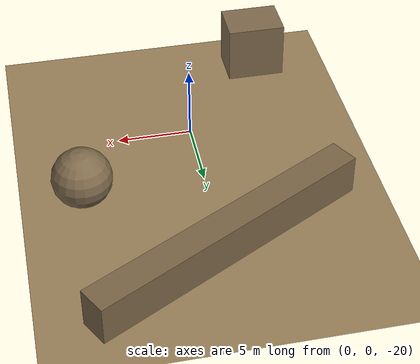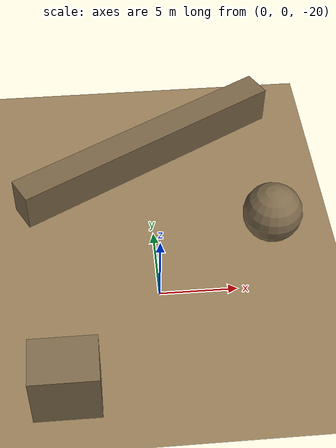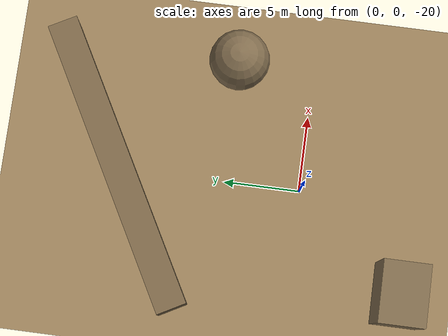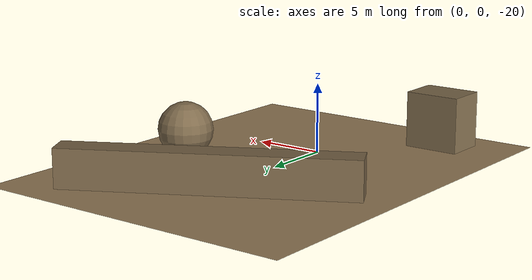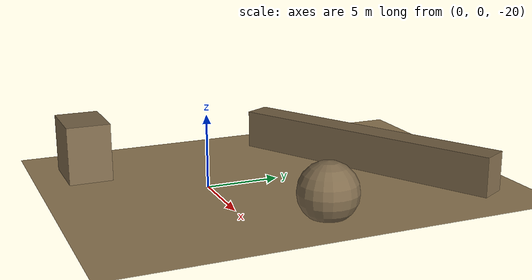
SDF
<?xml version="1.0" ?>
<sdf version="1.9">
  <world name="ocean">

    <physics name="1ms" type="ignored">
      <max_step_size>0.002</max_step_size>
      <real_time_factor>1.0</real_time_factor>
    </physics>

    <plugin filename="gz-sim-physics-system" name="gz::sim::systems::Physics"/>
    <plugin filename="gz-sim-user-commands-system" name="gz::sim::systems::UserCommands"/>
    <plugin filename="gz-sim-scene-broadcaster-system" name="gz::sim::systems::SceneBroadcaster"/>
    <plugin filename="gz-sim-contact-system" name="gz::sim::systems::Contact"/>
    <plugin filename="gz-sim-imu-system" name="gz::sim::systems::Imu"/>
    <plugin filename="gz-sim-magnetometer-system" name="gz::sim::systems::Magnetometer"/>
    <plugin filename="gz-sim-air-pressure-system" name="gz::sim::systems::AirPressure"/>
    <plugin filename="gz-sim-sensors-system" name="gz::sim::systems::Sensors">
      <render_engine>ogre2</render_engine>
    </plugin>

    <!-- Graded buoyancy: surface at z=0, seawater below. -->
    <plugin filename="gz-sim-buoyancy-system" name="gz::sim::systems::Buoyancy">
      <graded_buoyancy>
        <default_density>1025.0</default_density>
        <density_change>
          <above_depth>0.0</above_depth>
          <density>1.225</density>
        </density_change>
      </graded_buoyancy>
    </plugin>

    <scene>
      <ambient>0.4 0.5 0.6 1.0</ambient>
      <background>0.1 0.25 0.45 1.0</background>
      <grid>false</grid>
    </scene>

    <light type="directional" name="sun">
      <cast_shadows>true</cast_shadows>
      <pose>0 0 30 0 0 0</pose>
      <diffuse>0.8 0.85 0.9 1</diffuse>
      <specular>0.2 0.2 0.2 1</specular>
      <direction>-0.3 0.2 -0.9</direction>
    </light>

    <!-- Seafloor plane at -20 m -->
    <model name="seafloor">
      <static>true</static>
      <link name="link">
        <pose>0 0 -20 0 0 0</pose>
        <collision name="c"><geometry><plane><normal>0 0 1</normal>
          <size>400 400</size></plane></geometry></collision>
        <visual name="v"><geometry><plane><normal>0 0 1</normal>
          <size>400 400</size></plane></geometry>
          <material><ambient>0.55 0.45 0.3 1</ambient><diffuse>0.6 0.5 0.35 1</diffuse></material>
        </visual>
      </link>
    </model>

    <!-- Terrain relief (mounds) so bathymetric registration has structure. -->
    <model name="mound_1"><static>true</static><link name="l"><pose>8 5 -18.5 0 0 0</pose>
      <collision name="c"><geometry><sphere><radius>2.0</radius></sphere></geometry></collision>
      <visual name="v"><geometry><sphere><radius>2.0</radius></sphere></geometry>
        <material><diffuse>0.5 0.42 0.3 1</diffuse></material></visual></link></model>
    <model name="mound_2"><static>true</static><link name="l"><pose>-6 -7 -18.0 0 0 0</pose>
      <collision name="c"><geometry><box><size>4 3 4</size></box></geometry></collision>
      <visual name="v"><geometry><box><size>4 3 4</size></box></geometry>
        <material><diffuse>0.5 0.42 0.3 1</diffuse></material></visual></link></model>
    <model name="ridge"><static>true</static><link name="l"><pose>0 12 -18.8 0 0 0.5</pose>
      <collision name="c"><geometry><box><size>20 2 3</size></box></geometry></collision>
      <visual name="v"><geometry><box><size>20 2 3</size></box></geometry>
        <material><diffuse>0.48 0.4 0.28 1</diffuse></material></visual></link></model>

  </world>
</sdf>
